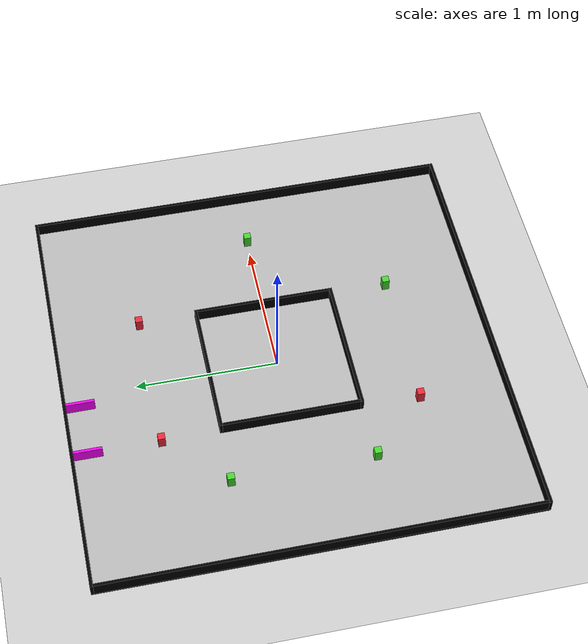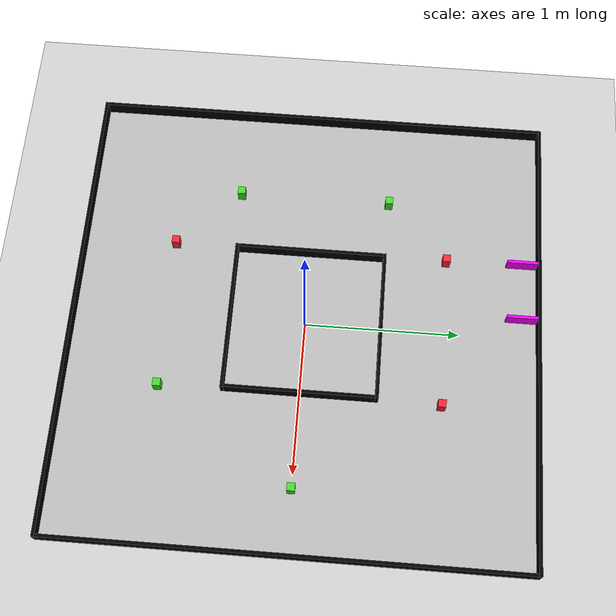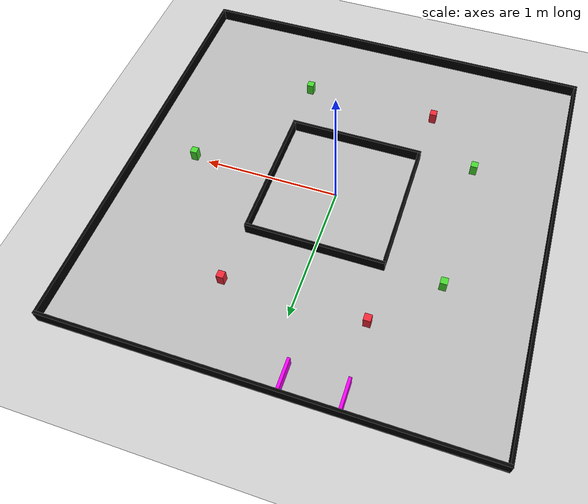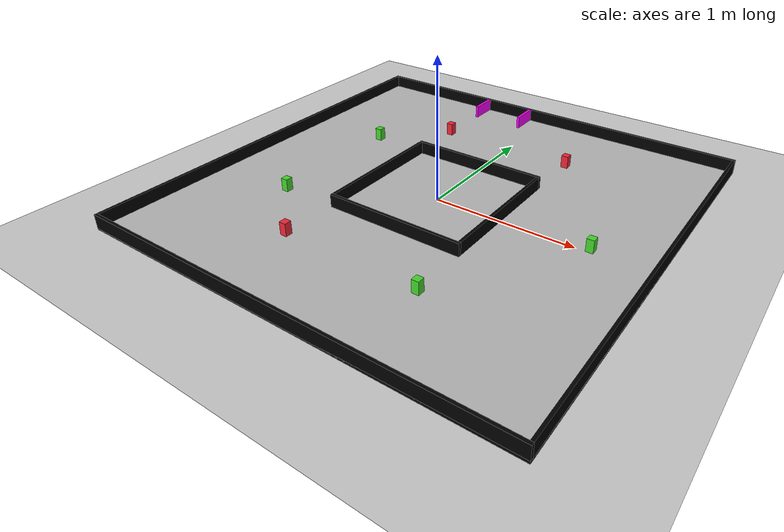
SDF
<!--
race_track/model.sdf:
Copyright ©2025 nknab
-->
<?xml version="1.0" ?>
<sdf version="1.6">
	<world name="race_track_traffic_signs">
		<physics name="1ms" type="ignored">
			<max_step_size>0.001</max_step_size>
			<real_time_factor>1.0</real_time_factor>
		</physics>
		<plugin filename="gz-sim-physics-system" name="gz::sim::systems::Physics">
		</plugin>
		<plugin filename="gz-sim-user-commands-system" name="gz::sim::systems::UserCommands">
		</plugin>
		<plugin filename="gz-sim-scene-broadcaster-system" name="gz::sim::systems::SceneBroadcaster">
		</plugin>
		<plugin filename="gz-sim-sensors-system" name="gz::sim::systems::Sensors">
			<render_engine>ogre</render_engine>
		</plugin>
		<plugin filename="gz-sim-contact-system" name="gz::sim::systems::Contact">
		</plugin>
		<plugin filename="gz-sim-imu-system" name="gz::sim::systems::Imu">
		</plugin>
		<gravity>0 0 -9.81</gravity>
		<magnetic_field>5.5645e-06 2.28758e-05 -4.23884e-05</magnetic_field>
		<include>
			<uri>model://models/sun</uri>
		</include>
		<include>
			<uri>model://models/ground_plane</uri>
		</include>
		<include>
			<uri>model://models/race_track</uri>
		</include>
		<!-- Walls -->
		<model name="walls">
			<static>true</static>
			<pose relative_to="race_track">0 0 0.06 0 0 0</pose>
			<link name="top_wall">
				<pose>0 1.51 0 0 0 0</pose>
				<collision name="top_wall_collision">
					<geometry>
						<box>
							<size>3.04 0.02 0.1</size>
						</box>
					</geometry>
				</collision>
				<visual name="top_wall_visual">
					<geometry>
						<box>
							<size>3.04 0.02 0.1</size>
						</box>
					</geometry>
					<material>
						<ambient>0 0 0 1</ambient>
						<diffuse>0 0 0 1</diffuse>
					</material>
				</visual>
			</link>
			<link name="bottom_wall">
				<pose>0 -1.51 0 0 0 0</pose>
				<collision name="bottom_wall_collision">
					<geometry>
						<box>
							<size>3.04 0.02 0.1</size>
						</box>
					</geometry>
				</collision>
				<visual name="bottom_wall_visual">
					<geometry>
						<box>
							<size>3.04 0.02 0.1</size>
						</box>
					</geometry>
					<material>
						<ambient>0 0 0 1</ambient>
						<diffuse>0 0 0 1</diffuse>
					</material>
				</visual>
			</link>
			<link name="left_wall">
				<pose>-1.51 0 0 0 0 0</pose>
				<collision name="left_wall_collision">
					<geometry>
						<box>
							<size>0.02 3.0 0.1</size>
						</box>
					</geometry>
				</collision>
				<visual name="left_wall_visual">
					<geometry>
						<box>
							<size>0.02 3.0 0.1</size>
						</box>
					</geometry>
					<material>
						<ambient>0 0 0 1</ambient>
						<diffuse>0 0 0 1</diffuse>
					</material>
				</visual>
			</link>
			<link name="right_wall">
				<pose>1.51 0 0 0 0 0</pose>
				<collision name="right_wall_collision">
					<geometry>
						<box>
							<size>0.02 3.0 0.1</size>
						</box>
					</geometry>
				</collision>
				<visual name="right_wall_visual">
					<geometry>
						<box>
							<size>0.02 3.0 0.1</size>
						</box>
					</geometry>
					<material>
						<ambient>0 0 0 1</ambient>
						<diffuse>0 0 0 1</diffuse>
					</material>
				</visual>
			</link>
		</model>
		<!-- OBSTACLE CHALLENGE GAME BOARD -->
		<!-- Inner Walls -->
		<model name="inner_walls">
			<static>true</static>
			<pose relative_to="race_track">0 0 0.06 0 0 0</pose>
			<link name="top_inner_wall">
				<pose>0 0.49 0 0 0 0</pose>
				<collision name="top_inner_wall_collision">
					<geometry>
						<box>
							<size>1.0 0.02 0.1</size>
						</box>
					</geometry>
				</collision>
				<visual name="top_inner_wall_visual">
					<geometry>
						<box>
							<size>1.0 0.02 0.1</size>
						</box>
					</geometry>
					<material>
						<ambient>0 0 0 1</ambient>
						<diffuse>0 0 0 1</diffuse>
					</material>
				</visual>
			</link>
			<link name="bottom_inner_wall">
				<pose>0 -0.49 0 0 0 0</pose>
				<collision name="bottom_inner_wall_collision">
					<geometry>
						<box>
							<size>1.0 0.02 0.1</size>
						</box>
					</geometry>
				</collision>
				<visual name="bottom_inner_wall_visual">
					<geometry>
						<box>
							<size>1.0 0.02 0.1</size>
						</box>
					</geometry>
					<material>
						<ambient>0 0 0 1</ambient>
						<diffuse>0 0 0 1</diffuse>
					</material>
				</visual>
			</link>
			<link name="left_inner_wall">
				<pose>-0.49 0 0 0 0 0</pose>
				<collision name="left_inner_wall_collision">
					<geometry>
						<box>
							<size>0.02 0.96 0.1</size>
						</box>
					</geometry>
				</collision>
				<visual name="left_inner_wall_visual">
					<geometry>
						<box>
							<size>0.02 0.96 0.1</size>
						</box>
					</geometry>
					<material>
						<ambient>0 0 0 1</ambient>
						<diffuse>0 0 0 1</diffuse>
					</material>
				</visual>
			</link>
			<link name="right_inner_wall">
				<pose>0.49 0 0 0 0 0</pose>
				<collision name="right_inner_wall_collision">
					<geometry>
						<box>
							<size>0.02 0.96 0.1</size>
						</box>
					</geometry>
				</collision>
				<visual name="right_inner_wall_visual">
					<geometry>
						<box>
							<size>0.02 0.96 0.1</size>
						</box>
					</geometry>
					<material>
						<ambient>0 0 0 1</ambient>
						<diffuse>0 0 0 1</diffuse>
					</material>
				</visual>
			</link>
		</model>
		<!-- Parking Lot Walls -->
		<model name="parking_lot">
			<pose relative_to="race_track">0 0 0.06 0 0 3.141592653589793</pose>
			<link name="parking_lot_right_wall">
				<pose>0.51 -1.4 0 0 0 0</pose>
				<collision name="parking_lot_right_wall_collision">
					<geometry>
						<box>
							<size>0.02 0.2 0.1</size>
						</box>
					</geometry>
					<surface>
						<friction>
							<ode>
								<mu>0.5</mu>
								<mu2>0.5</mu2>
							</ode>
						</friction>
					</surface>
				</collision>
				<visual name="parking_lot_right_wall_visual">
					<geometry>
						<box>
							<size>0.02 0.2 0.1</size>
						</box>
					</geometry>
					<material>
						<ambient>1.0 0.0 1.0 1.0</ambient>
						<diffuse>1.0 0.0 1.0 1.0</diffuse>
					</material>
				</visual>
				<inertial>
					<pose>0 0 0 0 0 0</pose>
					<mass>0.6</mass>
					<inertia>
						<ixx>0.0025000000000000005</ixx>
						<ixy>0</ixy>
						<ixz>0</ixz>
						<iyy>0.0005200000000000001</iyy>
						<iyz>0</iyz>
						<izz>0.00202</izz>
					</inertia>
				</inertial>
			</link>
			<link name="parking_lot_left_wall">
				<pose relative_to="parking_lot_right_wall">-0.39 0 0 0 0 0</pose>
				<collision name="parking_lot_left_wall_collision">
					<geometry>
						<box>
							<size>0.02 0.2 0.1</size>
						</box>
					</geometry>
					<surface>
						<friction>
							<ode>
								<mu>0.5</mu>
								<mu2>0.5</mu2>
							</ode>
						</friction>
					</surface>
				</collision>
				<visual name="parking_lot_left_wall_visual">
					<geometry>
						<box>
							<size>0.02 0.2 0.1</size>
						</box>
					</geometry>
					<material>
						<ambient>1.0 0.0 1.0 1.0</ambient>
						<diffuse>1.0 0.0 1.0 1.0</diffuse>
					</material>
				</visual>
				<inertial>
					<pose>0 0 0 0 0 0</pose>
					<mass>0.6</mass>
					<inertia>
						<ixx>0.0025000000000000005</ixx>
						<ixy>0</ixy>
						<ixz>0</ixz>
						<iyy>0.0005200000000000001</iyy>
						<iyz>0</iyz>
						<izz>0.00202</izz>
					</inertia>
				</inertial>
			</link>
		</model>
		<!-- Traffic Signs -->
		<!-- Right Straightforward Section Traffic Signs -->
		<model name="Right_traffic_signs">
			<pose relative_to="race_track">0 0 0.06 0 0 1.5707963267948966</pose>
			<link name="Right_5G_traffic_sign">
				<pose>0 -1.1 0 0 0 0</pose>
				<collision name="Right_5G_traffic_signs_collision">
					<geometry>
						<box>
							<size>0.05 0.05 0.1</size>
						</box>
					</geometry>
					<surface>
						<friction>
							<ode>
								<mu>0.5</mu>
								<mu2>0.5</mu2>
							</ode>
						</friction>
					</surface>
				</collision>
				<visual name="Right_5G_traffic_signs_visual">
					<geometry>
						<box>
							<size>0.05 0.05 0.1</size>
						</box>
					</geometry>
					<material>
						<ambient>0.267 0.839 0.173 1.0</ambient>
						<diffuse>0.267 0.839 0.173 1.0</diffuse>
						<specular>0 0 0 0</specular>
						<emissive>0 0 0 1</emissive>
					</material>
				</visual>
				<inertial>
					<pose>0 0 0 0 0 0</pose>
					<mass>0.5</mass>
					<inertia>
						<ixx>0.0005208333333333334</ixx>
						<ixy>0</ixy>
						<ixz>0</ixz>
						<iyy>0.0005208333333333334</iyy>
						<iyz>0</iyz>
						<izz>0.00020833333333333337</izz>
					</inertia>
				</inertial>
			</link>
		</model>
		<!-- Bottom Straightforward Section Traffic Signs -->
		<model name="Bottom_traffic_signs">
			<pose relative_to="race_track">0 0 0.06 0 0 0</pose>
			<link name="Bottom_1R_traffic_sign">
				<pose>-0.5 -0.9 0 0 0 0</pose>
				<collision name="Bottom_1R_traffic_signs_collision">
					<geometry>
						<box>
							<size>0.05 0.05 0.1</size>
						</box>
					</geometry>
					<surface>
						<friction>
							<ode>
								<mu>0.5</mu>
								<mu2>0.5</mu2>
							</ode>
						</friction>
					</surface>
				</collision>
				<visual name="Bottom_1R_traffic_signs_visual">
					<geometry>
						<box>
							<size>0.05 0.05 0.1</size>
						</box>
					</geometry>
					<material>
						<ambient>0.933 0.153 0.216 1.0</ambient>
						<diffuse>0.933 0.153 0.216 1.0</diffuse>
						<specular>0 0 0 0</specular>
						<emissive>0 0 0 1</emissive>
					</material>
				</visual>
				<inertial>
					<pose>0 0 0 0 0 0</pose>
					<mass>0.5</mass>
					<inertia>
						<ixx>0.0005208333333333334</ixx>
						<ixy>0</ixy>
						<ixz>0</ixz>
						<iyy>0.0005208333333333334</iyy>
						<iyz>0</iyz>
						<izz>0.00020833333333333337</izz>
					</inertia>
				</inertial>
			</link>
			<link name="Bottom_3G_traffic_sign">
				<pose>0.5 -0.9 0 0 0 0</pose>
				<collision name="Bottom_3G_traffic_signs_collision">
					<geometry>
						<box>
							<size>0.05 0.05 0.1</size>
						</box>
					</geometry>
					<surface>
						<friction>
							<ode>
								<mu>0.5</mu>
								<mu2>0.5</mu2>
							</ode>
						</friction>
					</surface>
				</collision>
				<visual name="Bottom_3G_traffic_signs_visual">
					<geometry>
						<box>
							<size>0.05 0.05 0.1</size>
						</box>
					</geometry>
					<material>
						<ambient>0.267 0.839 0.173 1.0</ambient>
						<diffuse>0.267 0.839 0.173 1.0</diffuse>
						<specular>0 0 0 0</specular>
						<emissive>0 0 0 1</emissive>
					</material>
				</visual>
				<inertial>
					<pose>0 0 0 0 0 0</pose>
					<mass>0.5</mass>
					<inertia>
						<ixx>0.0005208333333333334</ixx>
						<ixy>0</ixy>
						<ixz>0</ixz>
						<iyy>0.0005208333333333334</iyy>
						<iyz>0</iyz>
						<izz>0.00020833333333333337</izz>
					</inertia>
				</inertial>
			</link>
		</model>
		<!-- Left Straightforward Section Traffic Signs -->
		<model name="Left_traffic_signs">
			<pose relative_to="race_track">0 0 0.06 0 0 -1.5707963267948966</pose>
			<link name="Left_1G_traffic_sign">
				<pose>-0.5 -0.9 0 0 0 0</pose>
				<collision name="Left_1G_traffic_signs_collision">
					<geometry>
						<box>
							<size>0.05 0.05 0.1</size>
						</box>
					</geometry>
					<surface>
						<friction>
							<ode>
								<mu>0.5</mu>
								<mu2>0.5</mu2>
							</ode>
						</friction>
					</surface>
				</collision>
				<visual name="Left_1G_traffic_signs_visual">
					<geometry>
						<box>
							<size>0.05 0.05 0.1</size>
						</box>
					</geometry>
					<material>
						<ambient>0.267 0.839 0.173 1.0</ambient>
						<diffuse>0.267 0.839 0.173 1.0</diffuse>
						<specular>0 0 0 0</specular>
						<emissive>0 0 0 1</emissive>
					</material>
				</visual>
				<inertial>
					<pose>0 0 0 0 0 0</pose>
					<mass>0.5</mass>
					<inertia>
						<ixx>0.0005208333333333334</ixx>
						<ixy>0</ixy>
						<ixz>0</ixz>
						<iyy>0.0005208333333333334</iyy>
						<iyz>0</iyz>
						<izz>0.00020833333333333337</izz>
					</inertia>
				</inertial>
			</link>
			<link name="Left_3G_traffic_sign">
				<pose>0.5 -0.9 0 0 0 0</pose>
				<collision name="Left_3G_traffic_signs_collision">
					<geometry>
						<box>
							<size>0.05 0.05 0.1</size>
						</box>
					</geometry>
					<surface>
						<friction>
							<ode>
								<mu>0.5</mu>
								<mu2>0.5</mu2>
							</ode>
						</friction>
					</surface>
				</collision>
				<visual name="Left_3G_traffic_signs_visual">
					<geometry>
						<box>
							<size>0.05 0.05 0.1</size>
						</box>
					</geometry>
					<material>
						<ambient>0.267 0.839 0.173 1.0</ambient>
						<diffuse>0.267 0.839 0.173 1.0</diffuse>
						<specular>0 0 0 0</specular>
						<emissive>0 0 0 1</emissive>
					</material>
				</visual>
				<inertial>
					<pose>0 0 0 0 0 0</pose>
					<mass>0.5</mass>
					<inertia>
						<ixx>0.0005208333333333334</ixx>
						<ixy>0</ixy>
						<ixz>0</ixz>
						<iyy>0.0005208333333333334</iyy>
						<iyz>0</iyz>
						<izz>0.00020833333333333337</izz>
					</inertia>
				</inertial>
			</link>
		</model>
		<!-- Top Straightforward Section Traffic Signs -->
		<model name="Top_traffic_signs">
			<pose relative_to="race_track">0 0 0.06 0 0 3.141592653589793</pose>
			<link name="Top_1R_traffic_sign">
				<pose>-0.5 -0.9 0 0 0 0</pose>
				<collision name="Top_1R_traffic_signs_collision">
					<geometry>
						<box>
							<size>0.05 0.05 0.1</size>
						</box>
					</geometry>
					<surface>
						<friction>
							<ode>
								<mu>0.5</mu>
								<mu2>0.5</mu2>
							</ode>
						</friction>
					</surface>
				</collision>
				<visual name="Top_1R_traffic_signs_visual">
					<geometry>
						<box>
							<size>0.05 0.05 0.1</size>
						</box>
					</geometry>
					<material>
						<ambient>0.933 0.153 0.216 1.0</ambient>
						<diffuse>0.933 0.153 0.216 1.0</diffuse>
						<specular>0 0 0 0</specular>
						<emissive>0 0 0 1</emissive>
					</material>
				</visual>
				<inertial>
					<pose>0 0 0 0 0 0</pose>
					<mass>0.5</mass>
					<inertia>
						<ixx>0.0005208333333333334</ixx>
						<ixy>0</ixy>
						<ixz>0</ixz>
						<iyy>0.0005208333333333334</iyy>
						<iyz>0</iyz>
						<izz>0.00020833333333333337</izz>
					</inertia>
				</inertial>
			</link>
			<link name="Top_3R_traffic_sign">
				<pose>0.5 -0.9 0 0 0 0</pose>
				<collision name="Top_3R_traffic_signs_collision">
					<geometry>
						<box>
							<size>0.05 0.05 0.1</size>
						</box>
					</geometry>
					<surface>
						<friction>
							<ode>
								<mu>0.5</mu>
								<mu2>0.5</mu2>
							</ode>
						</friction>
					</surface>
				</collision>
				<visual name="Top_3R_traffic_signs_visual">
					<geometry>
						<box>
							<size>0.05 0.05 0.1</size>
						</box>
					</geometry>
					<material>
						<ambient>0.933 0.153 0.216 1.0</ambient>
						<diffuse>0.933 0.153 0.216 1.0</diffuse>
						<specular>0 0 0 0</specular>
						<emissive>0 0 0 1</emissive>
					</material>
				</visual>
				<inertial>
					<pose>0 0 0 0 0 0</pose>
					<mass>0.5</mass>
					<inertia>
						<ixx>0.0005208333333333334</ixx>
						<ixy>0</ixy>
						<ixz>0</ixz>
						<iyy>0.0005208333333333334</iyy>
						<iyz>0</iyz>
						<izz>0.00020833333333333337</izz>
					</inertia>
				</inertial>
			</link>
		</model>
	</world>
</sdf>

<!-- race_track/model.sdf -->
<sdf version="1.5">

	<model name="race_track">
		<static>true</static>
		<pose>0 0 0.01 0 0 0</pose>
		<link name="race_track_floor">
			<collision name="race_track_floor_collision">
				<geometry>
					<box>
						<size>3.04 3.04 0.017</size>
					</box>
				</geometry>
			</collision>
			<visual name="race_track_floor_visual">
				<geometry>
					<box>
						<size>3.04 3.04 0.017</size>
					</box>
				</geometry>
				<material>
					<ambient>0 0 0 1</ambient>
					<diffuse>0 0 0 1</diffuse>
				</material>
			</visual>
		</link>
		<link name="race_track_surface">
			<pose relative_to="race_track_floor">0 0 0.009 0 0 0</pose>
			<collision name="race_track_surface_collision">
				<geometry>
					<box>
						<size>3.04 3.04 0.003</size>
					</box>
				</geometry>
				<surface>
					<friction>
						<ode>
							<mu>0.5</mu>
							<mu2>0.4</mu2>
						</ode>
					</friction>
				</surface>
			</collision>
			<visual name="race_track_surface_visual">
				<cast_shadows>false</cast_shadows>
				<geometry>
					<mesh>
						<uri>model://models/race_track/meshes/mat.dae</uri>
					</mesh>
				</geometry>
			</visual>
		</link>
	</model>

</sdf>
